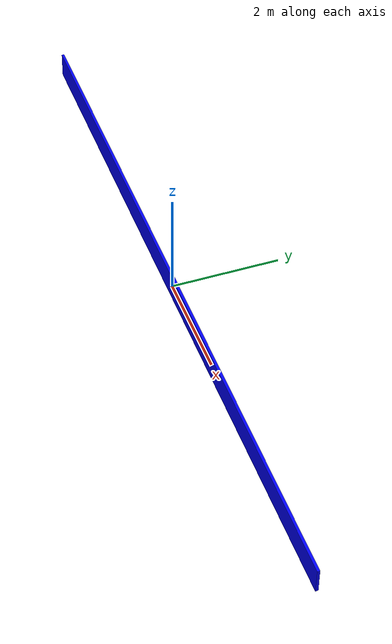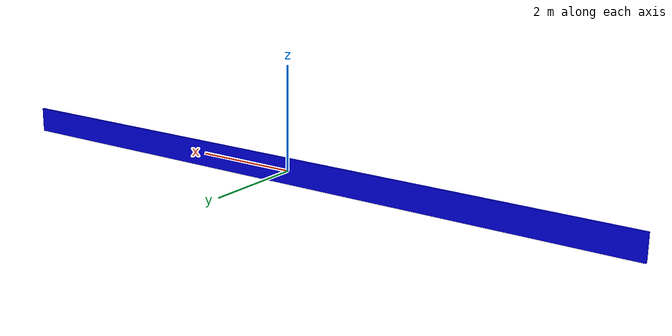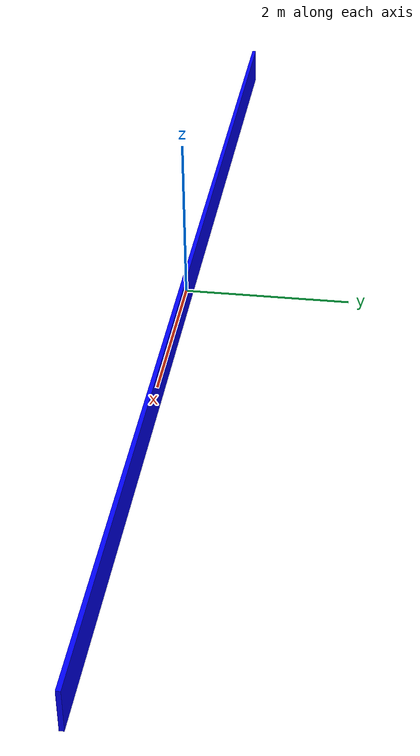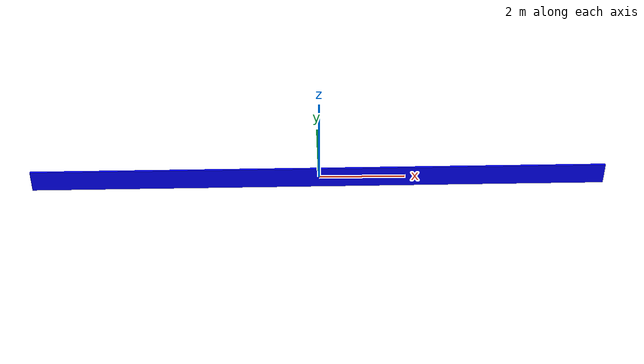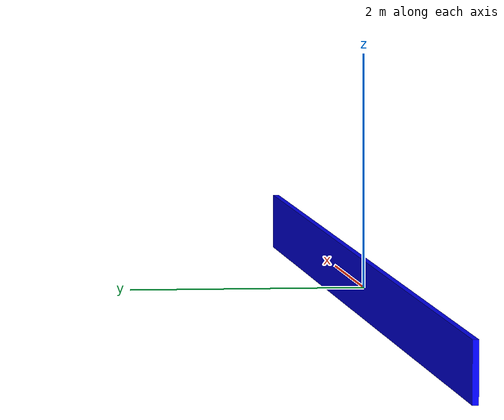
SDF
<?xml version="1.0"?>
<sdf version="1.6">
    <model name="drawn_line">
        <pose>0 0 0 0 0 0</pose>
        <static>true</static>
        <link name="link">
            <visual name="visual">
                <geometry>
                    <box>
                        <size>13.4112 0.05 0.5</size>
                    </box>
                </geometry>
                <material>
                    <ambient>0 0 1 1</ambient>
                </material>
            </visual>
            <collision name="collision">
      	        <geometry>
                    <box>
                        <size>13.4112 0.05 0.5</size>
                    </box>
                </geometry>
            </collision>
        </link>
    </model>
</sdf>
